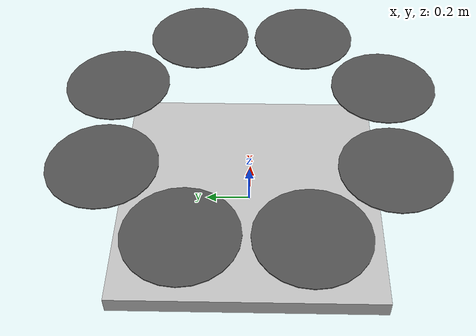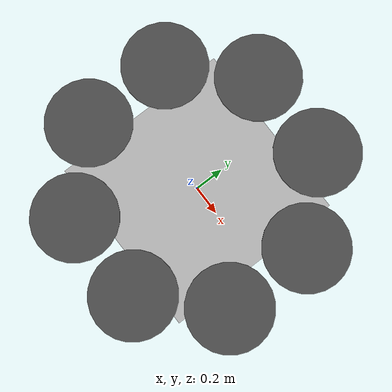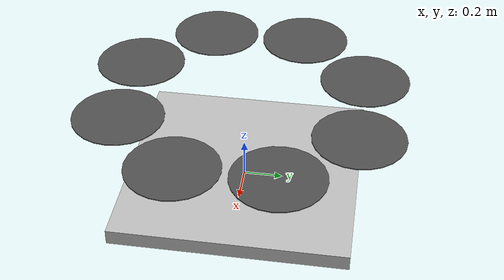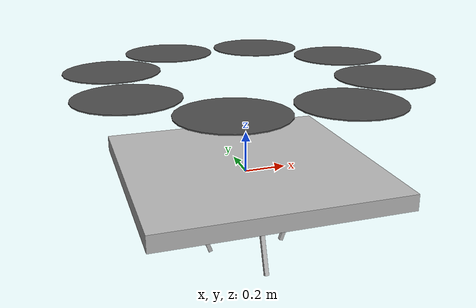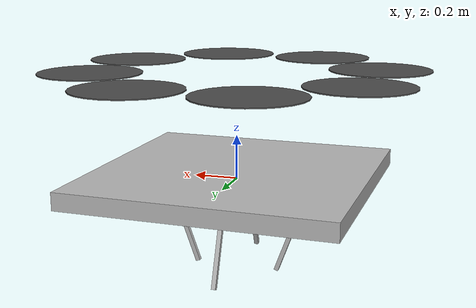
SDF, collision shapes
<?xml version="1.0" encoding="UTF-8"?>
<sdf version='1.9'>
  <model name='t18_base'>
    <pose>0 0 0 0 0 0</pose>
    <self_collide>false</self_collide>
    <static>false</static>
    <link name="base_link">
      <inertial>
        <mass>11.5</mass>
        <inertia>
          <ixx>1.045</ixx>
          <ixy>0</ixy>
          <ixz>0</ixz>
          <iyy>1.608</iyy>
          <iyz>0</iyz>
          <izz>0.965</izz>
        </inertia>
      </inertial>
      <gravity>true</gravity>
      <velocity_decay/>
      <visual name="base_link_visual">
        <pose>0 0 0 0 0 0</pose>
        <geometry>
          <mesh>
            <scale>1 1 1</scale>
            <uri>model://t18_base/meshes/t18_model.dae</uri>
          </mesh>
        </geometry>
      </visual>
      <visual name="5010_motor_base_0">
        <pose>0.59 -0.245 0.46 0 0 0</pose>
        <geometry>
          <mesh>
            <scale>1 1 1</scale>
            <uri>model://t18_base/meshes/5010Base.dae</uri>
          </mesh>
        </geometry>
      </visual>
      <visual name="5010_motor_base_1">
        <pose>-0.59 0.245 0.46 0 0 0</pose>
        <geometry>
          <mesh>
            <scale>1 1 1</scale>
            <uri>model://t18_base/meshes/5010Base.dae</uri>
          </mesh>
        </geometry>
      </visual>
      <visual name="5010_motor_base_2">
        <pose>0.245 -0.59 0.46 0 0 0</pose>
        <geometry>
          <mesh>
            <scale>1 1 1</scale>
            <uri>model://t18_base/meshes/5010Base.dae</uri>
          </mesh>
        </geometry>
      </visual>
      <visual name="5010_motor_base_3">
        <pose>-0.59 -0.245 0.46 0 0 0</pose>
        <geometry>
          <mesh>
            <scale>1 1 1</scale>
            <uri>model://t18_base/meshes/5010Base.dae</uri>
          </mesh>
        </geometry>
      </visual>
      <visual name="5010_motor_base_4">
        <pose>0.59 0.245 0.46 0 0 0</pose>
        <geometry>
          <mesh>
            <scale>1 1 1</scale>
            <uri>model://t18_base/meshes/5010Base.dae</uri>
          </mesh>
        </geometry>
      </visual>
      <visual name="5010_motor_base_5">
        <pose>-0.245 0.59 0.46 0 0 0</pose>
        <geometry>
          <mesh>
            <scale>1 1 1</scale>
            <uri>model://t18_base/meshes/5010Base.dae</uri>
          </mesh>
        </geometry>
      </visual>
      <visual name="5010_motor_base_6">
        <pose>0.245 0.59 0.46 0 0 0</pose>
        <geometry>
          <mesh>
            <scale>1 1 1</scale>
            <uri>model://t18_base/meshes/5010Base.dae</uri>
          </mesh>
        </geometry>
      </visual>
      <visual name="5010_motor_base_7">
        <pose>-0.245 -0.59 0.46 0 0 0</pose>
        <geometry>
          <mesh>
            <scale>1 1 1</scale>
            <uri>model://t18_base/meshes/5010Base.dae</uri>
          </mesh>
        </geometry>
      </visual>
      <collision name="base_link_collision_0">
        <pose>0 0 .007 0 0 0</pose>
        <geometry>
          <box>
            <size>1.2 1.2 0.08</size>
          </box>
        </geometry>
        <surface>
          <contact>
            <ode>
              <min_depth>0.001</min_depth>
              <max_vel>0</max_vel>
            </ode>
          </contact>
          <friction>
            <ode/>
          </friction>
        </surface>
      </collision>
      <collision name="base_link_collision_1">
        <pose>0 -0.25 -.25 -0.35 0 0</pose>
        <geometry>
          <box>
            <size>0.02 0.02 0.35</size>
          </box>
        </geometry>
        <surface>
          <contact>
            <ode>
              <min_depth>0.001</min_depth>
              <max_vel>0</max_vel>
            </ode>
          </contact>
          <friction>
            <ode/>
          </friction>
        </surface>
      </collision>
      <collision name="base_link_collision_2">
        <pose>0 0.25 -.25 0.35 0 0</pose>
        <geometry>
          <box>
            <size>0.02 0.02 0.35</size>
          </box>
        </geometry>
        <surface>
          <contact>
            <ode>
              <min_depth>0.001</min_depth>
              <max_vel>0</max_vel>
            </ode>
          </contact>
          <friction>
            <ode/>
          </friction>
        </surface>
      </collision>
      <collision name="base_link_collision_3">
        <pose>-0.25 0 -.25 0 -0.35 0</pose>
        <geometry>
          <box>
            <size>0.02 0.02 0.35</size>
          </box>
        </geometry>
        <surface>
          <contact>
            <ode>
              <min_depth>0.001</min_depth>
              <max_vel>0</max_vel>
            </ode>
          </contact>
          <friction>
            <ode/>
          </friction>
        </surface>
      </collision>
      <collision name="base_link_collision_4">
        <pose>0.25 0 -.25 0 0.35 0</pose>
        <geometry>
          <box>
            <size>0.02 0.02 0.35</size>
          </box>
        </geometry>
        <surface>
          <contact>
            <ode>
              <min_depth>0.001</min_depth>
              <max_vel>0</max_vel>
            </ode>
          </contact>
          <friction>
            <ode/>
          </friction>
        </surface>
      </collision>
      <sensor name="air_pressure_sensor" type="air_pressure">
        <always_on>1</always_on>
        <update_rate>50</update_rate>
        <air_pressure>
          <pressure>
            <noise type="gaussian">
              <mean>0</mean>
              <stddev>0.01</stddev>
            </noise>
          </pressure>
        </air_pressure>
      </sensor>
      <sensor name="imu_sensor" type="imu">
        <always_on>1</always_on>
        <update_rate>250</update_rate>
        <imu>
          <angular_velocity>
            <x>
              <noise type="gaussian">
                <mean>0</mean>
                <stddev>0.00018665</stddev>
                <dynamic_bias_stddev>3.8785e-05</dynamic_bias_stddev>
                <dynamic_bias_correlation_time>1000</dynamic_bias_correlation_time>
              </noise>
            </x>
            <y>
              <noise type="gaussian">
                <mean>0</mean>
                <stddev>0.00018665</stddev>
                <dynamic_bias_stddev>3.8785e-05</dynamic_bias_stddev>
                <dynamic_bias_correlation_time>1000</dynamic_bias_correlation_time>
              </noise>
            </y>
            <z>
              <noise type="gaussian">
                <mean>0</mean>
                <stddev>0.00018665</stddev>
                <dynamic_bias_stddev>3.8785e-05</dynamic_bias_stddev>
                <dynamic_bias_correlation_time>1000</dynamic_bias_correlation_time>
              </noise>
            </z>
          </angular_velocity>
          <linear_acceleration>
            <x>
              <noise type="gaussian">
                <mean>0</mean>
                <stddev>0.00186</stddev>
                <dynamic_bias_stddev>0.006</dynamic_bias_stddev>
                <dynamic_bias_correlation_time>300</dynamic_bias_correlation_time>
              </noise>
            </x>
            <y>
              <noise type="gaussian">
                <mean>0</mean>
                <stddev>0.00186</stddev>
                <dynamic_bias_stddev>0.006</dynamic_bias_stddev>
                <dynamic_bias_correlation_time>300</dynamic_bias_correlation_time>
              </noise>
            </y>
            <z>
              <noise type="gaussian">
                <mean>0</mean>
                <stddev>0.00186</stddev>
                <dynamic_bias_stddev>0.006</dynamic_bias_stddev>
                <dynamic_bias_correlation_time>300</dynamic_bias_correlation_time>
              </noise>
            </z>
          </linear_acceleration>
        </imu>
      </sensor>
      <sensor name="navsat_sensor" type="navsat">
        <always_on>1</always_on>
        <update_rate>30</update_rate>
      </sensor>
    </link>
    <link name="rotor_0">
      <gravity>true</gravity>
      <self_collide>false</self_collide>
      <velocity_decay/>
      <pose>0.59 -0.245 0.488 0 0 0</pose>
      <inertial>
          <mass>0.279</mass>
          <inertia>
            <ixx>0.0048</ixx>
            <iyy>0.0048</iyy>
            <izz>0.0073</izz>
          </inertia>
        </inertial>
      <visual name="rotor_0_visual">
        <pose>0 0 -0.016 0 0 0</pose>
        <geometry>
          <mesh>
            <scale>1 1 1</scale>
            <uri>model://t18_base/meshes/1861_prop_cw.stl</uri>
          </mesh>
        </geometry>
        <material>
          <script>
            <name>Gazebo/DarkGrey</name>
            <uri>file://media/materials/scripts/gazebo.material</uri>
          </script>
        </material>
      </visual>
      <visual name="rotor_0_visual_motor_bell">
        <pose>0 0 -0.032 0 0 0</pose>
        <geometry>
          <mesh>
            <scale>1 1 1</scale>
            <uri>model://t18_base/meshes/5010Bell.dae</uri>
          </mesh>
        </geometry>
      </visual>
      <collision name="rotor_0_collision">
        <pose>0 0 0 0 0 0 </pose>
        <geometry>
          <cylinder>
            <radius>0.23</radius>
            <length>0.005</length>
          </cylinder>
        </geometry>
        <surface>
          <contact>
            <ode>
              <min_depth>0.001</min_depth>
              <max_vel>0</max_vel>
            </ode>
          </contact>
          <friction>
            <ode/>
          </friction>
        </surface>
      </collision>
    </link>
    <joint name="rotor_0_joint" type="revolute">
      <parent>base_link</parent>
      <child>rotor_0</child>
      <axis>
        <xyz>0 0 1</xyz>
        <limit>
          <lower>-1e+16</lower>
          <upper>1e+16</upper>
        </limit>
        <dynamics>
          <spring_reference>0</spring_reference>
          <spring_stiffness>0</spring_stiffness>
        </dynamics>
      </axis>
    </joint>
    <link name="rotor_1">
      <gravity>true</gravity>
      <self_collide>false</self_collide>
      <velocity_decay/>
      <pose>-0.59 0.245 0.488 0 0 0</pose>
      <inertial>
          <mass>0.279</mass>
          <inertia>
            <ixx>0.0048</ixx>
            <iyy>0.0048</iyy>
            <izz>0.0073</izz>
          </inertia>
        </inertial>
      <visual name="rotor_1_visual">
        <pose>0 0 -0.016 0 0 0</pose>
        <geometry>
          <mesh>
            <scale>1 1 1</scale>
            <uri>model://t18_base/meshes/1861_prop_cw.stl</uri>
          </mesh>
        </geometry>
        <material>
          <script>
            <name>Gazebo/DarkGrey</name>
            <uri>file://media/materials/scripts/gazebo.material</uri>
          </script>
        </material>
      </visual>
      <visual name="rotor_1_visual_motor_bell">
        <pose>0 0 -0.032 0 0 0</pose>
        <geometry>
          <mesh>
            <scale>1 1 1</scale>
            <uri>model://t18_base/meshes/5010Bell.dae</uri>
          </mesh>
        </geometry>
      </visual>
      <collision name="rotor_1_collision">
        <pose>0 0 0 0 0 0 </pose>
        <geometry>
          <cylinder>
            <radius>0.23</radius>
            <length>0.005</length>
          </cylinder>
        </geometry>
        <surface>
          <contact>
            <ode>
              <min_depth>0.001</min_depth>
              <max_vel>0</max_vel>
            </ode>
          </contact>
          <friction>
            <ode/>
          </friction>
        </surface>
      </collision>
    </link>
    <joint name="rotor_1_joint" type="revolute">
      <parent>base_link</parent>
      <child>rotor_1</child>
      <axis>
        <xyz>0 0 1</xyz>
        <limit>
          <lower>-1e+16</lower>
          <upper>1e+16</upper>
        </limit>
        <dynamics>
          <spring_reference>0</spring_reference>
          <spring_stiffness>0</spring_stiffness>
        </dynamics>
      </axis>
    </joint>
    <link name="rotor_2">
      <gravity>true</gravity>
      <self_collide>false</self_collide>
      <velocity_decay/>
      <pose>0.245 -0.59 0.488 0 0 0</pose>
      <inertial>
          <mass>0.279</mass>
          <inertia>
            <ixx>0.0048</ixx>
            <iyy>0.0048</iyy>
            <izz>0.0073</izz>
          </inertia>
        </inertial>
      <visual name="rotor_2_visual">
        <pose>0 0 -0.016 0 0 0</pose>
        <geometry>
          <mesh>
            <scale>1 1 1</scale>
            <uri>model://t18_base/meshes/1861_prop_ccw.stl</uri>
          </mesh>
        </geometry>
        <material>
          <script>
            <name>Gazebo/DarkGrey</name>
            <uri>file://media/materials/scripts/gazebo.material</uri>
          </script>
        </material>
      </visual>
      <visual name="rotor_2_visual_motor_bell">
        <pose>0 0 -0.032 0 0 0</pose>
        <geometry>
          <mesh>
            <scale>1 1 1</scale>
            <uri>model://t18_base/meshes/5010Bell.dae</uri>
          </mesh>
        </geometry>
      </visual>
      <collision name="rotor_2_collision">
        <pose>0 0 0 0 0 0 </pose>
        <geometry>
          <cylinder>
            <radius>0.23</radius>
            <length>0.005</length>
          </cylinder>
        </geometry>
        <surface>
          <contact>
            <ode>
              <min_depth>0.001</min_depth>
              <max_vel>0</max_vel>
            </ode>
          </contact>
          <friction>
            <ode/>
          </friction>
        </surface>
      </collision>
    </link>
    <joint name="rotor_2_joint" type="revolute">
      <parent>base_link</parent>
      <child>rotor_2</child>
      <axis>
        <xyz>0 0 1</xyz>
        <limit>
          <lower>-1e+16</lower>
          <upper>1e+16</upper>
        </limit>
        <dynamics>
          <spring_reference>0</spring_reference>
          <spring_stiffness>0</spring_stiffness>
        </dynamics>
      </axis>
    </joint>
    <link name="rotor_3">
      <gravity>true</gravity>
      <self_collide>false</self_collide>
      <velocity_decay/>
      <pose>-0.59 -0.245 0.488 0 0 0</pose>
      <inertial>
          <mass>0.279</mass>
          <inertia>
            <ixx>0.0048</ixx>
            <iyy>0.0048</iyy>
            <izz>0.0073</izz>
          </inertia>
        </inertial>
      <visual name="rotor_3_visual">
        <pose>0 0 -0.016 0 0 0</pose>
        <geometry>
          <mesh>
            <scale>1 1 1</scale>
            <uri>model://t18_base/meshes/1861_prop_ccw.stl</uri>
          </mesh>
        </geometry>
        <material>
          <script>
            <name>Gazebo/DarkGrey</name>
            <uri>file://media/materials/scripts/gazebo.material</uri>
          </script>
        </material>
      </visual>
      <visual name="rotor_3_visual_motor_bell">
        <pose>0 0 -0.032 0 0 0</pose>
        <geometry>
          <mesh>
            <scale>1 1 1</scale>
            <uri>model://t18_base/meshes/5010Bell.dae</uri>
          </mesh>
        </geometry>
      </visual>
      <collision name="rotor_3_collision">
        <pose>0 0 0 0 0 0 </pose>
        <geometry>
          <cylinder>
            <radius>0.23</radius>
            <length>0.005</length>
          </cylinder>
        </geometry>
        <surface>
          <contact>
            <ode>
              <min_depth>0.001</min_depth>
              <max_vel>0</max_vel>
            </ode>
          </contact>
          <friction>
            <ode/>
          </friction>
        </surface>
      </collision>
    </link>
    <joint name="rotor_3_joint" type="revolute">
      <parent>base_link</parent>
      <child>rotor_3</child>
      <axis>
        <xyz>0 0 1</xyz>
        <limit>
          <lower>-1e+16</lower>
          <upper>1e+16</upper>
        </limit>
        <dynamics>
          <spring_reference>0</spring_reference>
          <spring_stiffness>0</spring_stiffness>
        </dynamics>
      </axis>
    </joint>
    <link name="rotor_4">
      <gravity>true</gravity>
      <self_collide>false</self_collide>
      <velocity_decay/>
      <pose>0.59 0.245 0.488 0 0 0</pose>
      <inertial>
          <mass>0.279</mass>
          <inertia>
            <ixx>0.0048</ixx>
            <iyy>0.0048</iyy>
            <izz>0.0073</izz>
          </inertia>
        </inertial>
      <visual name="rotor_4_visual">
        <pose>0 0 -0.016 0 0 0</pose>
        <geometry>
          <mesh>
            <scale>1 1 1</scale>
            <uri>model://t18_base/meshes/1861_prop_ccw.stl</uri>
          </mesh>
        </geometry>
        <material>
          <script>
            <name>Gazebo/DarkGrey</name>
            <uri>file://media/materials/scripts/gazebo.material</uri>
          </script>
        </material>
      </visual>
      <visual name="rotor_4_visual_motor_bell">
        <pose>0 0 -0.032 0 0 0</pose>
        <geometry>
          <mesh>
            <scale>1 1 1</scale>
            <uri>model://t18_base/meshes/5010Bell.dae</uri>
          </mesh>
        </geometry>
      </visual>
      <collision name="rotor_4_collision">
        <pose>0 0 0 0 0 0 </pose>
        <geometry>
          <cylinder>
            <radius>0.23</radius>
            <length>0.005</length>
          </cylinder>
        </geometry>
        <surface>
          <contact>
            <ode>
              <min_depth>0.001</min_depth>
              <max_vel>0</max_vel>
            </ode>
          </contact>
          <friction>
            <ode/>
          </friction>
        </surface>
      </collision>
    </link>
    <joint name="rotor_4_joint" type="revolute">
      <parent>base_link</parent>
      <child>rotor_4</child>
      <axis>
        <xyz>0 0 1</xyz>
        <limit>
          <lower>-1e+16</lower>
          <upper>1e+16</upper>
        </limit>
        <dynamics>
          <spring_reference>0</spring_reference>
          <spring_stiffness>0</spring_stiffness>
        </dynamics>
      </axis>
    </joint>
    <link name="rotor_5">
      <gravity>true</gravity>
      <self_collide>false</self_collide>
      <velocity_decay/>
      <pose>-0.245 0.59 0.488 0 0 0</pose>
      <inertial>
          <mass>0.279</mass>
          <inertia>
            <ixx>0.0048</ixx>
            <iyy>0.0048</iyy>
            <izz>0.0073</izz>
          </inertia>
        </inertial>
      <visual name="rotor_5_visual">
        <pose>0 0 -0.016 0 0 0</pose>
        <geometry>
          <mesh>
            <scale>1 1 1</scale>
            <uri>model://t18_base/meshes/1861_prop_ccw.stl</uri>
          </mesh>
        </geometry>
        <material>
          <script>
            <name>Gazebo/DarkGrey</name>
            <uri>file://media/materials/scripts/gazebo.material</uri>
          </script>
        </material>
      </visual>
      <visual name="rotor_5_visual_motor_bell">
        <pose>0 0 -0.032 0 0 0</pose>
        <geometry>
          <mesh>
            <scale>1 1 1</scale>
            <uri>model://t18_base/meshes/5010Bell.dae</uri>
          </mesh>
        </geometry>
      </visual>
      <collision name="rotor_5_collision">
        <pose>0 0 0 0 0 0 </pose>
        <geometry>
          <cylinder>
            <radius>0.23</radius>
            <length>0.005</length>
          </cylinder>
        </geometry>
        <surface>
          <contact>
            <ode>
              <min_depth>0.001</min_depth>
              <max_vel>0</max_vel>
            </ode>
          </contact>
          <friction>
            <ode/>
          </friction>
        </surface>
      </collision>
    </link>
    <joint name="rotor_5_joint" type="revolute">
      <parent>base_link</parent>
      <child>rotor_5</child>
      <axis>
        <xyz>0 0 1</xyz>
        <limit>
          <lower>-1e+16</lower>
          <upper>1e+16</upper>
        </limit>
        <dynamics>
          <spring_reference>0</spring_reference>
          <spring_stiffness>0</spring_stiffness>
        </dynamics>
      </axis>
    </joint>
   <link name="rotor_6">
      <gravity>true</gravity>
      <self_collide>false</self_collide>
      <velocity_decay/>
      <pose>0.245 0.59 0.488 0 0 0</pose>
      <inertial>
          <mass>0.279</mass>
          <inertia>
            <ixx>0.0048</ixx>
            <iyy>0.0048</iyy>
            <izz>0.0073</izz>
          </inertia>
        </inertial>
      <visual name="rotor_6_visual">
        <pose>0 0 -0.016 0 0 0</pose>
        <geometry>
          <mesh>
            <scale>1 1 1</scale>
            <uri>model://t18_base/meshes/1861_prop_cw.stl</uri>
          </mesh>
        </geometry>
        <material>
          <script>
            <name>Gazebo/DarkGrey</name>
            <uri>file://media/materials/scripts/gazebo.material</uri>
          </script>
        </material>
      </visual>
      <visual name="rotor_6_visual_motor_bell">
        <pose>0 0 -0.032 0 0 0</pose>
        <geometry>
          <mesh>
            <scale>1 1 1</scale>
            <uri>model://t18_base/meshes/5010Bell.dae</uri>
          </mesh>
        </geometry>
      </visual>
      <collision name="rotor_6_collision">
        <pose>0 0 0 0 0 0 </pose>
        <geometry>
          <cylinder>
            <radius>0.23</radius>
            <length>0.005</length>
          </cylinder>
        </geometry>
        <surface>
          <contact>
            <ode>
              <min_depth>0.001</min_depth>
              <max_vel>0</max_vel>
            </ode>
          </contact>
          <friction>
            <ode/>
          </friction>
        </surface>
      </collision>
    </link>
    <joint name="rotor_6_joint" type="revolute">
      <parent>base_link</parent>
      <child>rotor_6</child>
      <axis>
        <xyz>0 0 1</xyz>
        <limit>
          <lower>-1e+16</lower>
          <upper>1e+16</upper>
        </limit>
        <dynamics>
          <spring_reference>0</spring_reference>
          <spring_stiffness>0</spring_stiffness>
        </dynamics>
      </axis>
    </joint>
    <link name="rotor_7">
      <gravity>true</gravity>
      <self_collide>false</self_collide>
      <velocity_decay/>
      <pose>-0.245 -0.59 0.488 0 0 0</pose>
      <inertial>
          <mass>0.279</mass>
          <inertia>
            <ixx>0.0048</ixx>
            <iyy>0.0048</iyy>
            <izz>0.0073</izz>
          </inertia>
        </inertial>
      <visual name="rotor_7_visual">
        <pose>0 0 -0.016 0 0 0</pose>
        <geometry>
          <mesh>
            <scale>1 1 1</scale>
            <uri>model://t18_base/meshes/1861_prop_cw.stl</uri>
          </mesh>
        </geometry>
        <material>
          <script>
            <name>Gazebo/DarkGrey</name>
            <uri>file://media/materials/scripts/gazebo.material</uri>
          </script>
        </material>
      </visual>
      <visual name="rotor_7_visual_motor_bell">
        <pose>0 0 -0.032 0 0 0</pose>
        <geometry>
          <mesh>
            <scale>1 1 1</scale>
            <uri>model://t18_base/meshes/5010Bell.dae</uri>
          </mesh>
        </geometry>
      </visual>
      <collision name="rotor_7_collision">
        <pose>0 0 0 0 0 0 </pose>
        <geometry>
          <cylinder>
            <radius>0.23</radius>
            <length>0.005</length>
          </cylinder>
        </geometry>
        <surface>
          <contact>
            <ode>
              <min_depth>0.001</min_depth>
              <max_vel>0</max_vel>
            </ode>
          </contact>
          <friction>
            <ode/>
          </friction>
        </surface>
      </collision>
    </link>
    <joint name="rotor_7_joint" type="revolute">
      <parent>base_link</parent>
      <child>rotor_7</child>
      <axis>
        <xyz>0 0 1</xyz>
        <limit>
          <lower>-1e+16</lower>
          <upper>1e+16</upper>
        </limit>
        <dynamics>
          <spring_reference>0</spring_reference>
          <spring_stiffness>0</spring_stiffness>
        </dynamics>
      </axis>
    </joint>
  </model>
</sdf>
